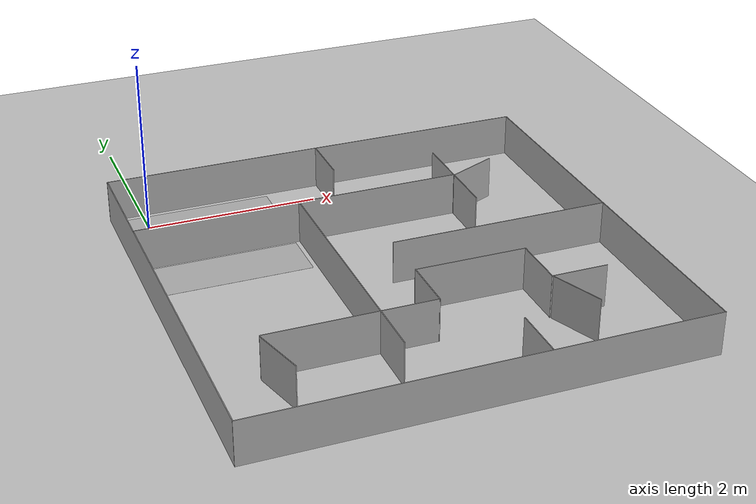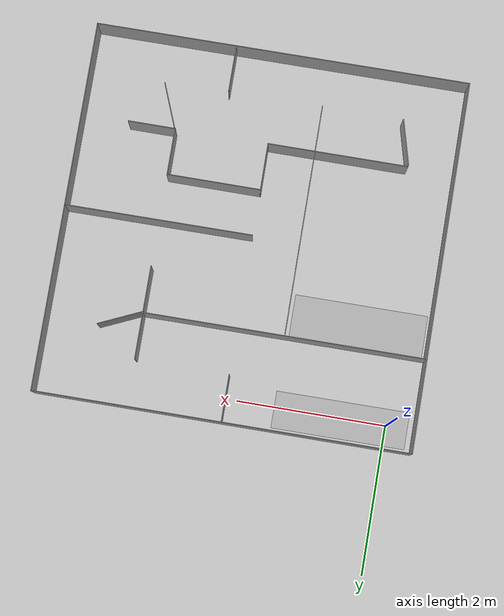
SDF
<sdf version="1.7">
 <world name="default">
  <light name="sun" type="directional">
   <pose>0 0 10 0 -0 0</pose>
   <diffuse>0.8 0.8 0.8 1</diffuse>
   <specular>0.2 0.2 0.2 1</specular>
   <attenuation>
    <range>1000</range>
    <constant>0.9</constant>
    <linear>0.01</linear>
    <quadratic>0.001</quadratic>
   </attenuation>
   <direction>-0.5 0.1 -0.9</direction>
   <spot><inner_angle>0</inner_angle><outer_angle>0</outer_angle><falloff>0</falloff></spot>
  </light>
  <model name="ground_plane">
   <static>1</static>
   <link name="link">
    <collision name="collision">
     <geometry><plane><normal>0 0 1</normal><size>100 100</size></plane></geometry>
     <surface><friction><ode><mu>100</mu><mu2>50</mu2></ode></friction></surface>
    </collision>
    <visual name="visual">
     <cast_shadows>0</cast_shadows>
     <geometry><plane><normal>0 0 1</normal><size>100 100</size></plane></geometry>
     <material>
      <script><uri>file://media/materials/scripts/gazebo.material</uri><name>Gazebo/Grey</name></script>
     </material>
    </visual>
   </link>
  </model>
  <gravity>0 0 -9.8</gravity>
  <magnetic_field>6e-06 2.3e-05 -4.2e-05</magnetic_field>
  <atmosphere type="adiabatic"/>
  <physics type="ode">
   <max_step_size>0.001</max_step_size>
   <real_time_factor>1</real_time_factor>
   <real_time_update_rate>1000</real_time_update_rate>
  </physics>
  <scene><ambient>0.4 0.4 0.4 1</ambient><background>0.7 0.7 0.7 1</background><shadows>1</shadows></scene>
  <spherical_coordinates>
   <surface_model>EARTH_WGS84</surface_model>
   <latitude_deg>0</latitude_deg>
   <longitude_deg>0</longitude_deg>
   <elevation>0</elevation>
   <heading_deg>0</heading_deg>
  </spherical_coordinates>
  <model name="17th_ifly_scale1.25">
   <pose>2.15063 -2.17324 0 0 -0 0</pose>
   <link name="Wall_12">
    <collision name="Wall_12_Collision">
     <geometry><box><size>0.630711 0.01 0.5</size></box></geometry>
     <pose>0 0 0.25 0 -0 0</pose>
    </collision>
    <visual name="Wall_12_Visual">
     <pose>0 0 0.25 0 -0 0</pose>
     <geometry><box><size>0.630711 0.01 0.5</size></box></geometry>
     <material>
      <script><uri>file://media/materials/scripts/gazebo.material</uri><name>Gazebo/Grey</name></script>
      <ambient>1 1 1 1</ambient>
     </material>
     <meta><layer>0</layer></meta>
    </visual>
    <pose>0.0005 2.183 0 0 -0 -1.5708</pose>
   </link>
   <link name="Wall_14">
    <collision name="Wall_14_Collision">
     <geometry><box><size>1.25238 0.01 0.5</size></box></geometry>
     <pose>0 0 0.25 0 -0 0</pose>
    </collision>
    <visual name="Wall_14_Visual">
     <pose>0 0 0.25 0 -0 0</pose>
     <geometry><box><size>1.25238 0.01 0.5</size></box></geometry>
     <material>
      <script><uri>file://media/materials/scripts/gazebo.material</uri><name>Gazebo/Grey</name></script>
      <ambient>1 1 1 1</ambient>
     </material>
     <meta><layer>0</layer></meta>
    </visual>
    <pose>1.2565 1.2475 0 0 -0 -1.57241</pose>
   </link>
   <link name="Wall_16">
    <collision name="Wall_16_Collision">
     <geometry><box><size>3.12902 0.01 0.5</size></box></geometry>
     <pose>0 0 0.25 0 -0 0</pose>
    </collision>
    <visual name="Wall_16_Visual">
     <pose>0 0 0.25 0 -0 0</pose>
     <geometry><box><size>3.12902 0.01 0.5</size></box></geometry>
     <material>
      <script><uri>file://media/materials/scripts/gazebo.material</uri><name>Gazebo/Grey</name></script>
      <ambient>1 1 1 1</ambient>
     </material>
     <meta><layer>0</layer></meta>
    </visual>
    <pose>-0.6345 -0.311999 0 0 -0 -1.57015</pose>
   </link>
   <link name="Wall_18">
    <collision name="Wall_18_Collision">
     <geometry><box><size>2.529 0.01 0.5</size></box></geometry>
     <pose>0 0 0.25 0 -0 0</pose>
    </collision>
    <visual name="Wall_18_Visual">
     <pose>0 0 0.25 0 -0 0</pose>
     <geometry><box><size>2.529 0.01 0.5</size></box></geometry>
     <material>
      <script><uri>file://media/materials/scripts/gazebo.material</uri><name>Gazebo/Grey</name></script>
      <ambient>1 1 1 1</ambient>
     </material>
     <meta><layer>0</layer></meta>
    </visual>
    <pose>1.262 -0.000499 0 0 -0 -3.1408</pose>
   </link>
   <link name="Wall_2">
    <collision name="Wall_2_Collision">
     <geometry><box><size>5.01254 0.01 0.5</size></box></geometry>
     <pose>0 0 0.25 0 -0 0</pose>
    </collision>
    <visual name="Wall_2_Visual">
     <pose>0 0 0.25 0 -0 0</pose>
     <geometry><box><size>5.01254 0.01 0.5</size></box></geometry>
     <material>
      <script><uri>file://media/materials/scripts/gazebo.material</uri><name>Gazebo/Grey</name></script>
      <ambient>1 1 1 1</ambient>
     </material>
     <meta><layer>0</layer></meta>
    </visual>
    <pose>-2.5255 1e-06 0 0 -0 1.5708</pose>
   </link>
   <link name="Wall_20">
    <collision name="Wall_20_Collision">
     <geometry><box><size>0.64199 0.01 0.5</size></box></geometry>
     <pose>0 0 0.25 0 -0 0</pose>
    </collision>
    <visual name="Wall_20_Visual">
     <pose>0 0 0.25 0 -0 0</pose>
     <geometry><box><size>0.64199 0.01 0.5</size></box></geometry>
     <material>
      <script><uri>file://media/materials/scripts/gazebo.material</uri><name>Gazebo/Grey</name></script>
      <ambient>1 1 1 1</ambient>
     </material>
     <meta><layer>0</layer></meta>
    </visual>
    <pose>1.5715 -1.2515 0 0 -0 3.13843</pose>
   </link>
   <link name="Wall_21">
    <collision name="Wall_21_Collision">
     <geometry><box><size>0.635649 0.01 0.5</size></box></geometry>
     <pose>0 0 0.25 0 -0 0</pose>
    </collision>
    <visual name="Wall_21_Visual">
     <pose>0 0 0.25 0 -0 0</pose>
     <geometry><box><size>0.635649 0.01 0.5</size></box></geometry>
     <material>
      <script><uri>file://media/materials/scripts/gazebo.material</uri><name>Gazebo/Grey</name></script>
      <ambient>1 1 1 1</ambient>
     </material>
     <meta><layer>0</layer></meta>
    </visual>
    <pose>1.2555 -0.937499 0 0 -0 1.5708</pose>
   </link>
   <link name="Wall_22">
    <collision name="Wall_22_Collision">
     <geometry><box><size>1.26741 0.01 0.5</size></box></geometry>
     <pose>0 0 0.25 0 -0 0</pose>
    </collision>
    <visual name="Wall_22_Visual">
     <pose>0 0 0.25 0 -0 0</pose>
     <geometry><box><size>1.26741 0.01 0.5</size></box></geometry>
     <material>
      <script><uri>file://media/materials/scripts/gazebo.material</uri><name>Gazebo/Grey</name></script>
      <ambient>1 1 1 1</ambient>
     </material>
     <meta><layer>0</layer></meta>
    </visual>
    <pose>0.627 -0.622499 0 0 -0 3.13841</pose>
   </link>
   <link name="Wall_23">
    <collision name="Wall_23_Collision">
     <geometry><box><size>0.641988 0.01 0.5</size></box></geometry>
     <pose>0 0 0.25 0 -0 0</pose>
    </collision>
    <visual name="Wall_23_Visual">
     <pose>0 0 0.25 0 -0 0</pose>
     <geometry><box><size>0.641988 0.01 0.5</size></box></geometry>
     <material>
      <script><uri>file://media/materials/scripts/gazebo.material</uri><name>Gazebo/Grey</name></script>
      <ambient>1 1 1 1</ambient>
     </material>
     <meta><layer>0</layer></meta>
    </visual>
    <pose>-0.0005 -0.936499 0 0 -0 -1.56763</pose>
   </link>
   <link name="Wall_24">
    <collision name="Wall_24_Collision">
     <geometry><box><size>1.89316 0.01 0.5</size></box></geometry>
     <pose>0 0 0.25 0 -0 0</pose>
    </collision>
    <visual name="Wall_24_Visual">
     <pose>0 0 0.25 0 -0 0</pose>
     <geometry><box><size>1.89316 0.01 0.5</size></box></geometry>
     <material>
      <script><uri>file://media/materials/scripts/gazebo.material</uri><name>Gazebo/Grey</name></script>
      <ambient>1 1 1 1</ambient>
     </material>
     <meta><layer>0</layer></meta>
    </visual>
    <pose>-0.941 -1.2515 0 0 -0 3.14053</pose>
   </link>
   <link name="Wall_26">
    <collision name="Wall_26_Collision">
     <geometry><box><size>0.626858 0.01 0.5</size></box></geometry>
     <pose>0 0 0.25 0 -0 0</pose>
    </collision>
    <visual name="Wall_26_Visual">
     <pose>0 0 0.25 0 -0 0</pose>
     <geometry><box><size>0.626858 0.01 0.5</size></box></geometry>
     <material>
      <script><uri>file://media/materials/scripts/gazebo.material</uri><name>Gazebo/Grey</name></script>
      <ambient>1 1 1 1</ambient>
     </material>
     <meta><layer>0</layer></meta>
    </visual>
    <pose>0.6355 -2.187 0 0 -0 1.5708</pose>
   </link>
   <link name="Wall_3">
    <collision name="Wall_3_Collision">
     <geometry><box><size>5.06129 0.01 0.5</size></box></geometry>
     <pose>0 0 0.25 0 -0 0</pose>
    </collision>
    <visual name="Wall_3_Visual">
     <pose>0 0 0.25 0 -0 0</pose>
     <geometry><box><size>5.06129 0.01 0.5</size></box></geometry>
     <material>
      <script><uri>file://media/materials/scripts/gazebo.material</uri><name>Gazebo/Grey</name></script>
      <ambient>1 1 1 1</ambient>
     </material>
     <meta><layer>0</layer></meta>
    </visual>
    <pose>-0 2.5015 0 0 -0 0</pose>
   </link>
   <link name="Wall_4">
    <collision name="Wall_4_Collision">
     <geometry><box><size>5.01064 0.01 0.5</size></box></geometry>
     <pose>0 0 0.25 0 -0 0</pose>
    </collision>
    <visual name="Wall_4_Visual">
     <pose>0 0 0.25 0 -0 0</pose>
     <geometry><box><size>5.01064 0.01 0.5</size></box></geometry>
     <material>
      <script><uri>file://media/materials/scripts/gazebo.material</uri><name>Gazebo/Grey</name></script>
      <ambient>1 1 1 1</ambient>
     </material>
     <meta><layer>0</layer></meta>
    </visual>
    <pose>2.5255 0.001001 0 0 -0 -1.5708</pose>
   </link>
   <link name="Wall_5">
    <collision name="Wall_5_Collision">
     <geometry><box><size>5.061 0.01 0.5</size></box></geometry>
     <pose>0 0 0.25 0 -0 0</pose>
    </collision>
    <visual name="Wall_5_Visual">
     <pose>0 0 0.25 0 -0 0</pose>
     <geometry><box><size>5.061 0.01 0.5</size></box></geometry>
     <material>
      <script><uri>file://media/materials/scripts/gazebo.material</uri><name>Gazebo/Grey</name></script>
      <ambient>1 1 1 1</ambient>
     </material>
     <meta><layer>0</layer></meta>
    </visual>
    <pose>-0 -2.5005 0 0 -0 -3.1412</pose>
   </link>
   <link name="Wall_7">
    <collision name="Wall_7_Collision">
     <geometry><box><size>3.78886 0.01 0.5</size></box></geometry>
     <pose>0 0 0.25 0 -0 0</pose>
    </collision>
    <visual name="Wall_7_Visual">
     <pose>0 0 0.25 0 -0 0</pose>
     <geometry><box><size>3.78886 0.01 0.5</size></box></geometry>
     <material>
      <script><uri>file://media/materials/scripts/gazebo.material</uri><name>Gazebo/Grey</name></script>
      <ambient>1 1 1 1</ambient>
     </material>
     <meta><layer>0</layer></meta>
    </visual>
    <pose>-0.636 1.2485 0 0 -0 0.000529</pose>
   </link>
   <static>1</static>
  </model>
  <model name="start_plane">
   <static>1</static>
   <link name="link">
    <collision name="collision">
     <geometry><plane><normal>0 0 1</normal><size>0.5 1.8</size></plane></geometry>
     <surface><friction><ode><mu>100</mu><mu2>50</mu2></ode></friction></surface>
    </collision>
    <visual name="visual">
     <cast_shadows>0</cast_shadows>
     <geometry><plane><normal>0 0 1</normal><size>0.5 1.8</size></plane></geometry>
     <material>
      <script>
       <uri>model://start_plane/materials/scripts</uri>
       <uri>model://start_plane/materials/textures/</uri>
       <name>StartPlane/Image</name>
      </script>
     </material>
    </visual>
   </link>
   <pose>0.6 0.02 0.001 0 0 -1.57</pose>
  </model>
  <model name="race_end">
   <static>1</static>
   <link name="link">
    <collision name="collision">
     <geometry><plane><normal>0 0 1</normal><size>0.6 1.8</size></plane></geometry>
     <surface><friction><ode><mu>100</mu><mu2>50</mu2></ode></friction></surface>
    </collision>
    <visual name="visual">
     <cast_shadows>0</cast_shadows>
     <geometry><plane><normal>0 0 1</normal><size>0.6 1.8</size></plane></geometry>
     <material>
      <script>
       <uri>model://race_end/materials/scripts</uri>
       <uri>model://race_end/materials/textures</uri>
       <name>race_end_mat</name>
      </script>
     </material>
    </visual>
   </link>
   <pose>0.56 -1.25 0.0001 0 -0 1.5707</pose>
  </model>
  <model name="BarrierPlate_0">
   <link name="Wall_12">
    <pose>0.0005 2.183 0 0 0 -1.5708</pose>
    <visual name="Wall_12_Visual">
     <pose>0 0 0.25 0 -0 0</pose>
     <geometry><box><size>0.630711 0.01 0.5</size></box></geometry>
     <material>
      <script><uri>file://media/materials/scripts/gazebo.material</uri><name>Gazebo/Grey</name></script>
      <ambient>1 1 1 1</ambient>
      <shader type="pixel"/>
     </material>
     <meta><layer>0</layer></meta>
    </visual>
    <collision name="Wall_12_Collision">
     <pose>0 0 0.25 0 -0 0</pose>
     <geometry><box><size>0.630711 0.01 0.5</size></box></geometry>
     <surface>
      <friction>
       <ode><mu>1</mu><mu2>1</mu2><fdir1>0 0 0</fdir1><slip1>0</slip1><slip2>0</slip2></ode>
       <torsional>
        <coefficient>1</coefficient>
        <patch_radius>0</patch_radius>
        <surface_radius>0</surface_radius>
        <use_patch_radius>1</use_patch_radius>
        <ode><slip>0</slip></ode>
       </torsional>
      </friction>
      <bounce><restitution_coefficient>0</restitution_coefficient><threshold>1e+06</threshold></bounce>
      <contact>
       <collide_without_contact>0</collide_without_contact>
       <collide_without_contact_bitmask>1</collide_without_contact_bitmask>
       <collide_bitmask>1</collide_bitmask>
       <ode>
        <soft_cfm>0</soft_cfm>
        <soft_erp>0.2</soft_erp>
        <kp>1e+13</kp>
        <kd>1</kd>
        <max_vel>0.01</max_vel>
        <min_depth>0</min_depth>
       </ode>
       <bullet>
        <split_impulse>1</split_impulse>
        <split_impulse_penetration_threshold>-0.01</split_impulse_penetration_threshold>
        <soft_cfm>0</soft_cfm>
        <soft_erp>0.2</soft_erp>
        <kp>1e+13</kp>
        <kd>1</kd>
       </bullet>
      </contact>
     </surface>
    </collision>
   </link>
   <static>1</static>
   <pose>1.69848 -1.7052 0 0 0 -1.14763</pose>
  </model>
  <model name="BarrierPlate_1">
   <link name="Wall_12">
    <pose>0.0005 2.183 0 0 0 -1.5708</pose>
    <visual name="Wall_12_Visual">
     <pose>0 0 0.25 0 -0 0</pose>
     <geometry><box><size>0.630711 0.01 0.5</size></box></geometry>
     <material>
      <script><uri>file://media/materials/scripts/gazebo.material</uri><name>Gazebo/Grey</name></script>
      <ambient>1 1 1 1</ambient>
      <shader type="pixel"/>
     </material>
     <meta><layer>0</layer></meta>
    </visual>
    <collision name="Wall_12_Collision">
     <pose>0 0 0.25 0 -0 0</pose>
     <geometry><box><size>0.630711 0.01 0.5</size></box></geometry>
     <surface>
      <friction>
       <ode><mu>1</mu><mu2>1</mu2><fdir1>0 0 0</fdir1><slip1>0</slip1><slip2>0</slip2></ode>
       <torsional>
        <coefficient>1</coefficient>
        <patch_radius>0</patch_radius>
        <surface_radius>0</surface_radius>
        <use_patch_radius>1</use_patch_radius>
        <ode><slip>0</slip></ode>
       </torsional>
      </friction>
      <bounce><restitution_coefficient>0</restitution_coefficient><threshold>1e+06</threshold></bounce>
      <contact>
       <collide_without_contact>0</collide_without_contact>
       <collide_without_contact_bitmask>1</collide_without_contact_bitmask>
       <collide_bitmask>1</collide_bitmask>
       <ode>
        <soft_cfm>0</soft_cfm>
        <soft_erp>0.2</soft_erp>
        <kp>1e+13</kp>
        <kd>1</kd>
        <max_vel>0.01</max_vel>
        <min_depth>0</min_depth>
       </ode>
       <bullet>
        <split_impulse>1</split_impulse>
        <split_impulse_penetration_threshold>-0.01</split_impulse_penetration_threshold>
        <soft_cfm>0</soft_cfm>
        <soft_erp>0.2</soft_erp>
        <kp>1e+13</kp>
        <kd>1</kd>
       </bullet>
      </contact>
     </surface>
    </collision>
   </link>
   <static>1</static>
   <pose>4.33591 -5.75777 0 0 -0 0.377447</pose>
  </model>
  <model name="BarrierPlate_3">
   <link name="Wall_12">
    <pose>0.0005 2.183 0 0 0 -1.5708</pose>
    <visual name="Wall_12_Visual">
     <pose>0 0 0.25 0 -0 0</pose>
     <geometry><box><size>0.630711 0.01 0.5</size></box></geometry>
     <material>
      <script><uri>file://media/materials/scripts/gazebo.material</uri><name>Gazebo/Grey</name></script>
      <ambient>1 1 1 1</ambient>
      <shader type="pixel"/>
     </material>
     <meta><layer>0</layer></meta>
    </visual>
    <collision name="Wall_12_Collision">
     <pose>0 0 0.25 0 -0 0</pose>
     <geometry><box><size>0.630711 0.01 0.5</size></box></geometry>
     <surface>
      <friction>
       <ode><mu>1</mu><mu2>1</mu2><fdir1>0 0 0</fdir1><slip1>0</slip1><slip2>0</slip2></ode>
       <torsional>
        <coefficient>1</coefficient>
        <patch_radius>0</patch_radius>
        <surface_radius>0</surface_radius>
        <use_patch_radius>1</use_patch_radius>
        <ode><slip>0</slip></ode>
       </torsional>
      </friction>
      <bounce><restitution_coefficient>0</restitution_coefficient><threshold>1e+06</threshold></bounce>
      <contact>
       <collide_without_contact>0</collide_without_contact>
       <collide_without_contact_bitmask>1</collide_without_contact_bitmask>
       <collide_bitmask>1</collide_bitmask>
       <ode>
        <soft_cfm>0</soft_cfm>
        <soft_erp>0.2</soft_erp>
        <kp>1e+13</kp>
        <kd>1</kd>
        <max_vel>0.01</max_vel>
        <min_depth>0</min_depth>
       </ode>
       <bullet>
        <split_impulse>1</split_impulse>
        <split_impulse_penetration_threshold>-0.01</split_impulse_penetration_threshold>
        <soft_cfm>0</soft_cfm>
        <soft_erp>0.2</soft_erp>
        <kp>1e+13</kp>
        <kd>1</kd>
       </bullet>
      </contact>
     </surface>
    </collision>
   </link>
   <static>1</static>
   <pose>0.903422 -5.8557 0 0 -0 0.259658</pose>
  </model>
 </world>
</sdf>
